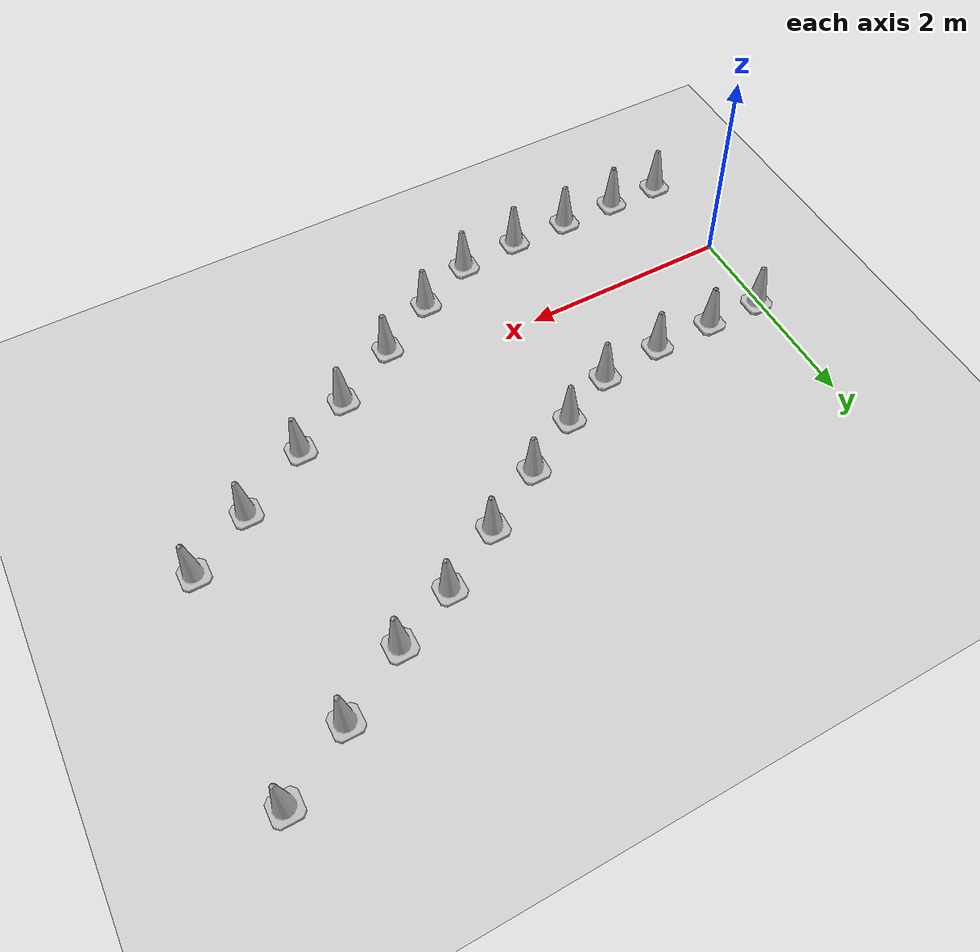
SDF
<sdf version="1.7">
 <world name="default">
  <model name="Construction_Cone_b">
   <link name="link">
    <inertial>
     <inertia><ixx>1</ixx><ixy>0</ixy><ixz>0</ixz><iyy>1</iyy><iyz>0</iyz><izz>1</izz></inertia>
     <mass>1</mass>
    </inertial>
    <visual name="visual">
     <geometry>
      <mesh><scale>4.9 4.9 4.5</scale><uri>./construction_cone/meshes/construction_cone_b.dae</uri></mesh>
     </geometry>
     <material><shader type="pixel"/></material>
    </visual>
    <collision name="collision">
     <geometry>
      <mesh><uri>./construction_cone/meshes/construction_cone_b.dae</uri><scale>4.9 4.9 4.5</scale></mesh>
     </geometry>
     <surface>
      <friction>
       <ode><mu>1</mu><mu2>1</mu2><fdir1>0 0 0</fdir1><slip1>0</slip1><slip2>0</slip2></ode>
       <torsional>
        <coefficient>1</coefficient>
        <patch_radius>0</patch_radius>
        <surface_radius>0</surface_radius>
        <use_patch_radius>1</use_patch_radius>
        <ode><slip>0</slip></ode>
       </torsional>
      </friction>
      <bounce><restitution_coefficient>0</restitution_coefficient><threshold>1e+06</threshold></bounce>
      <contact>
       <collide_without_contact>0</collide_without_contact>
       <collide_without_contact_bitmask>1</collide_without_contact_bitmask>
       <collide_bitmask>1</collide_bitmask>
       <ode>
        <soft_cfm>0</soft_cfm>
        <soft_erp>0.2</soft_erp>
        <kp>1e+13</kp>
        <kd>1</kd>
        <max_vel>0.01</max_vel>
        <min_depth>0</min_depth>
       </ode>
       <bullet>
        <split_impulse>1</split_impulse>
        <split_impulse_penetration_threshold>-0.01</split_impulse_penetration_threshold>
        <soft_cfm>0</soft_cfm>
        <soft_erp>0.2</soft_erp>
        <kp>1e+13</kp>
        <kd>1</kd>
       </bullet>
      </contact>
     </surface>
    </collision>
   </link>
   <static>0</static>
   <pose>0.093537 -0.897019 0.1 0 0 0</pose>
  </model>
  <model name="Construction_Cone_b_0">
   <link name="link">
    <inertial>
     <inertia><ixx>1</ixx><ixy>0</ixy><ixz>0</ixz><iyy>1</iyy><iyz>0</iyz><izz>1</izz></inertia>
     <mass>1</mass>
    </inertial>
    <visual name="visual">
     <geometry>
      <mesh><scale>4.9 4.9 4.5</scale><uri>./construction_cone/meshes/construction_cone_b.dae</uri></mesh>
     </geometry>
     <material><shader type="pixel"/></material>
    </visual>
    <collision name="collision">
     <geometry>
      <mesh><uri>./construction_cone/meshes/construction_cone_b.dae</uri><scale>4.9 4.9 4.5</scale></mesh>
     </geometry>
     <surface>
      <friction>
       <ode><mu>1</mu><mu2>1</mu2><fdir1>0 0 0</fdir1><slip1>0</slip1><slip2>0</slip2></ode>
       <torsional>
        <coefficient>1</coefficient>
        <patch_radius>0</patch_radius>
        <surface_radius>0</surface_radius>
        <use_patch_radius>1</use_patch_radius>
        <ode><slip>0</slip></ode>
       </torsional>
      </friction>
      <bounce><restitution_coefficient>0</restitution_coefficient><threshold>1e+06</threshold></bounce>
      <contact>
       <collide_without_contact>0</collide_without_contact>
       <collide_without_contact_bitmask>1</collide_without_contact_bitmask>
       <collide_bitmask>1</collide_bitmask>
       <ode>
        <soft_cfm>0</soft_cfm>
        <soft_erp>0.2</soft_erp>
        <kp>1e+13</kp>
        <kd>1</kd>
        <max_vel>0.01</max_vel>
        <min_depth>0</min_depth>
       </ode>
       <bullet>
        <split_impulse>1</split_impulse>
        <split_impulse_penetration_threshold>-0.01</split_impulse_penetration_threshold>
        <soft_cfm>0</soft_cfm>
        <soft_erp>0.2</soft_erp>
        <kp>1e+13</kp>
        <kd>1</kd>
       </bullet>
      </contact>
     </surface>
    </collision>
   </link>
   <static>0</static>
   <pose>0.606486 -0.90196 0.1 0 0 0</pose>
  </model>
  <model name="Construction_Cone_b_1">
   <link name="link">
    <inertial>
     <inertia><ixx>1</ixx><ixy>0</ixy><ixz>0</ixz><iyy>1</iyy><iyz>0</iyz><izz>1</izz></inertia>
     <mass>1</mass>
    </inertial>
    <visual name="visual">
     <geometry>
      <mesh><scale>4.9 4.9 4.5</scale><uri>./construction_cone/meshes/construction_cone_b.dae</uri></mesh>
     </geometry>
     <material><shader type="pixel"/></material>
    </visual>
    <collision name="collision">
     <geometry>
      <mesh><uri>./construction_cone/meshes/construction_cone_b.dae</uri><scale>4.9 4.9 4.5</scale></mesh>
     </geometry>
     <surface>
      <friction>
       <ode><mu>1</mu><mu2>1</mu2><fdir1>0 0 0</fdir1><slip1>0</slip1><slip2>0</slip2></ode>
       <torsional>
        <coefficient>1</coefficient>
        <patch_radius>0</patch_radius>
        <surface_radius>0</surface_radius>
        <use_patch_radius>1</use_patch_radius>
        <ode><slip>0</slip></ode>
       </torsional>
      </friction>
      <bounce><restitution_coefficient>0</restitution_coefficient><threshold>1e+06</threshold></bounce>
      <contact>
       <collide_without_contact>0</collide_without_contact>
       <collide_without_contact_bitmask>1</collide_without_contact_bitmask>
       <collide_bitmask>1</collide_bitmask>
       <ode>
        <soft_cfm>0</soft_cfm>
        <soft_erp>0.2</soft_erp>
        <kp>1e+13</kp>
        <kd>1</kd>
        <max_vel>0.01</max_vel>
        <min_depth>0</min_depth>
       </ode>
       <bullet>
        <split_impulse>1</split_impulse>
        <split_impulse_penetration_threshold>-0.01</split_impulse_penetration_threshold>
        <soft_cfm>0</soft_cfm>
        <soft_erp>0.2</soft_erp>
        <kp>1e+13</kp>
        <kd>1</kd>
       </bullet>
      </contact>
     </surface>
    </collision>
   </link>
   <static>0</static>
   <pose>1.16003 -0.900212 0.1 0 0 0</pose>
  </model>
  <model name="Construction_Cone_y">
   <link name="link">
    <inertial>
     <inertia><ixx>1</ixx><ixy>0</ixy><ixz>0</ixz><iyy>1</iyy><iyz>0</iyz><izz>1</izz></inertia>
     <mass>1</mass>
    </inertial>
    <visual name="visual">
     <geometry>
      <mesh><scale>4.9 4.9 4.5</scale><uri>./construction_cone/meshes/construction_cone_y.dae</uri></mesh>
     </geometry>
     <material><shader type="pixel"/></material>
    </visual>
    <collision name="collision">
     <geometry>
      <mesh><uri>./construction_cone/meshes/construction_cone_y.dae</uri><scale>4.9 4.9 4.5</scale></mesh>
     </geometry>
     <surface>
      <friction>
       <ode><mu>1</mu><mu2>1</mu2><fdir1>0 0 0</fdir1><slip1>0</slip1><slip2>0</slip2></ode>
       <torsional>
        <coefficient>1</coefficient>
        <patch_radius>0</patch_radius>
        <surface_radius>0</surface_radius>
        <use_patch_radius>1</use_patch_radius>
        <ode><slip>0</slip></ode>
       </torsional>
      </friction>
      <bounce><restitution_coefficient>0</restitution_coefficient><threshold>1e+06</threshold></bounce>
      <contact>
       <collide_without_contact>0</collide_without_contact>
       <collide_without_contact_bitmask>1</collide_without_contact_bitmask>
       <collide_bitmask>1</collide_bitmask>
       <ode>
        <soft_cfm>0</soft_cfm>
        <soft_erp>0.2</soft_erp>
        <kp>1e+13</kp>
        <kd>1</kd>
        <max_vel>0.01</max_vel>
        <min_depth>0</min_depth>
       </ode>
       <bullet>
        <split_impulse>1</split_impulse>
        <split_impulse_penetration_threshold>-0.01</split_impulse_penetration_threshold>
        <soft_cfm>0</soft_cfm>
        <soft_erp>0.2</soft_erp>
        <kp>1e+13</kp>
        <kd>1</kd>
       </bullet>
      </contact>
     </surface>
    </collision>
   </link>
   <static>0</static>
   <pose>0.091565 0.900771 0.1 0 0 0</pose>
  </model>
  <model name="Construction_Cone_b_2">
   <link name="link">
    <inertial>
     <inertia><ixx>1</ixx><ixy>0</ixy><ixz>0</ixz><iyy>1</iyy><iyz>0</iyz><izz>1</izz></inertia>
     <mass>1</mass>
    </inertial>
    <visual name="visual">
     <geometry>
      <mesh><scale>4.9 4.9 4.5</scale><uri>./construction_cone/meshes/construction_cone_b.dae</uri></mesh>
     </geometry>
     <material><shader type="pixel"/></material>
    </visual>
    <collision name="collision">
     <geometry>
      <mesh><uri>./construction_cone/meshes/construction_cone_b.dae</uri><scale>4.9 4.9 4.5</scale></mesh>
     </geometry>
     <surface>
      <friction>
       <ode><mu>1</mu><mu2>1</mu2><fdir1>0 0 0</fdir1><slip1>0</slip1><slip2>0</slip2></ode>
       <torsional>
        <coefficient>1</coefficient>
        <patch_radius>0</patch_radius>
        <surface_radius>0</surface_radius>
        <use_patch_radius>1</use_patch_radius>
        <ode><slip>0</slip></ode>
       </torsional>
      </friction>
      <bounce><restitution_coefficient>0</restitution_coefficient><threshold>1e+06</threshold></bounce>
      <contact>
       <collide_without_contact>0</collide_without_contact>
       <collide_without_contact_bitmask>1</collide_without_contact_bitmask>
       <collide_bitmask>1</collide_bitmask>
       <ode>
        <soft_cfm>0</soft_cfm>
        <soft_erp>0.2</soft_erp>
        <kp>1e+13</kp>
        <kd>1</kd>
        <max_vel>0.01</max_vel>
        <min_depth>0</min_depth>
       </ode>
       <bullet>
        <split_impulse>1</split_impulse>
        <split_impulse_penetration_threshold>-0.01</split_impulse_penetration_threshold>
        <soft_cfm>0</soft_cfm>
        <soft_erp>0.2</soft_erp>
        <kp>1e+13</kp>
        <kd>1</kd>
       </bullet>
      </contact>
     </surface>
    </collision>
   </link>
   <static>0</static>
   <pose>1.73023 -0.902282 0.1 0 0 0</pose>
  </model>
  <model name="Construction_Cone_b_3">
   <link name="link">
    <inertial>
     <inertia><ixx>1</ixx><ixy>0</ixy><ixz>0</ixz><iyy>1</iyy><iyz>0</iyz><izz>1</izz></inertia>
     <mass>1</mass>
    </inertial>
    <visual name="visual">
     <geometry>
      <mesh><scale>4.9 4.9 4.5</scale><uri>./construction_cone/meshes/construction_cone_b.dae</uri></mesh>
     </geometry>
     <material><shader type="pixel"/></material>
    </visual>
    <collision name="collision">
     <geometry>
      <mesh><uri>./construction_cone/meshes/construction_cone_b.dae</uri><scale>4.9 4.9 4.5</scale></mesh>
     </geometry>
     <surface>
      <friction>
       <ode><mu>1</mu><mu2>1</mu2><fdir1>0 0 0</fdir1><slip1>0</slip1><slip2>0</slip2></ode>
       <torsional>
        <coefficient>1</coefficient>
        <patch_radius>0</patch_radius>
        <surface_radius>0</surface_radius>
        <use_patch_radius>1</use_patch_radius>
        <ode><slip>0</slip></ode>
       </torsional>
      </friction>
      <bounce><restitution_coefficient>0</restitution_coefficient><threshold>1e+06</threshold></bounce>
      <contact>
       <collide_without_contact>0</collide_without_contact>
       <collide_without_contact_bitmask>1</collide_without_contact_bitmask>
       <collide_bitmask>1</collide_bitmask>
       <ode>
        <soft_cfm>0</soft_cfm>
        <soft_erp>0.2</soft_erp>
        <kp>1e+13</kp>
        <kd>1</kd>
        <max_vel>0.01</max_vel>
        <min_depth>0</min_depth>
       </ode>
       <bullet>
        <split_impulse>1</split_impulse>
        <split_impulse_penetration_threshold>-0.01</split_impulse_penetration_threshold>
        <soft_cfm>0</soft_cfm>
        <soft_erp>0.2</soft_erp>
        <kp>1e+13</kp>
        <kd>1</kd>
       </bullet>
      </contact>
     </surface>
    </collision>
   </link>
   <static>0</static>
   <pose>2.31119 -0.853844 0.1 0 0 0</pose>
  </model>
  <model name="Construction_Cone_b_4">
   <link name="link">
    <inertial>
     <inertia><ixx>1</ixx><ixy>0</ixy><ixz>0</ixz><iyy>1</iyy><iyz>0</iyz><izz>1</izz></inertia>
     <mass>1</mass>
    </inertial>
    <visual name="visual">
     <geometry>
      <mesh><scale>4.9 4.9 4.5</scale><uri>./construction_cone/meshes/construction_cone_b.dae</uri></mesh>
     </geometry>
     <material><shader type="pixel"/></material>
    </visual>
    <collision name="collision">
     <geometry>
      <mesh><uri>./construction_cone/meshes/construction_cone_b.dae</uri><scale>4.9 4.9 4.5</scale></mesh>
     </geometry>
     <surface>
      <friction>
       <ode><mu>1</mu><mu2>1</mu2><fdir1>0 0 0</fdir1><slip1>0</slip1><slip2>0</slip2></ode>
       <torsional>
        <coefficient>1</coefficient>
        <patch_radius>0</patch_radius>
        <surface_radius>0</surface_radius>
        <use_patch_radius>1</use_patch_radius>
        <ode><slip>0</slip></ode>
       </torsional>
      </friction>
      <bounce><restitution_coefficient>0</restitution_coefficient><threshold>1e+06</threshold></bounce>
      <contact>
       <collide_without_contact>0</collide_without_contact>
       <collide_without_contact_bitmask>1</collide_without_contact_bitmask>
       <collide_bitmask>1</collide_bitmask>
       <ode>
        <soft_cfm>0</soft_cfm>
        <soft_erp>0.2</soft_erp>
        <kp>1e+13</kp>
        <kd>1</kd>
        <max_vel>0.01</max_vel>
        <min_depth>0</min_depth>
       </ode>
       <bullet>
        <split_impulse>1</split_impulse>
        <split_impulse_penetration_threshold>-0.01</split_impulse_penetration_threshold>
        <soft_cfm>0</soft_cfm>
        <soft_erp>0.2</soft_erp>
        <kp>1e+13</kp>
        <kd>1</kd>
       </bullet>
      </contact>
     </surface>
    </collision>
   </link>
   <static>0</static>
   <pose>2.84787 -0.595042 0.1 0 0 0</pose>
  </model>
  <model name="Construction_Cone_b_5">
   <link name="link">
    <inertial>
     <inertia><ixx>1</ixx><ixy>0</ixy><ixz>0</ixz><iyy>1</iyy><iyz>0</iyz><izz>1</izz></inertia>
     <mass>1</mass>
    </inertial>
    <visual name="visual">
     <geometry>
      <mesh><scale>4.9 4.9 4.5</scale><uri>./construction_cone/meshes/construction_cone_b.dae</uri></mesh>
     </geometry>
     <material><shader type="pixel"/></material>
    </visual>
    <collision name="collision">
     <geometry>
      <mesh><uri>./construction_cone/meshes/construction_cone_b.dae</uri><scale>4.9 4.9 4.5</scale></mesh>
     </geometry>
     <surface>
      <friction>
       <ode><mu>1</mu><mu2>1</mu2><fdir1>0 0 0</fdir1><slip1>0</slip1><slip2>0</slip2></ode>
       <torsional>
        <coefficient>1</coefficient>
        <patch_radius>0</patch_radius>
        <surface_radius>0</surface_radius>
        <use_patch_radius>1</use_patch_radius>
        <ode><slip>0</slip></ode>
       </torsional>
      </friction>
      <bounce><restitution_coefficient>0</restitution_coefficient><threshold>1e+06</threshold></bounce>
      <contact>
       <collide_without_contact>0</collide_without_contact>
       <collide_without_contact_bitmask>1</collide_without_contact_bitmask>
       <collide_bitmask>1</collide_bitmask>
       <ode>
        <soft_cfm>0</soft_cfm>
        <soft_erp>0.2</soft_erp>
        <kp>1e+13</kp>
        <kd>1</kd>
        <max_vel>0.01</max_vel>
        <min_depth>0</min_depth>
       </ode>
       <bullet>
        <split_impulse>1</split_impulse>
        <split_impulse_penetration_threshold>-0.01</split_impulse_penetration_threshold>
        <soft_cfm>0</soft_cfm>
        <soft_erp>0.2</soft_erp>
        <kp>1e+13</kp>
        <kd>1</kd>
       </bullet>
      </contact>
     </surface>
    </collision>
   </link>
   <static>0</static>
   <pose>3.39406 -0.275779 0.1 0 0 0</pose>
  </model>
  <model name="Construction_Cone_b_6">
   <link name="link">
    <inertial>
     <inertia><ixx>1</ixx><ixy>0</ixy><ixz>0</ixz><iyy>1</iyy><iyz>0</iyz><izz>1</izz></inertia>
     <mass>1</mass>
    </inertial>
    <visual name="visual">
     <geometry>
      <mesh><scale>4.9 4.9 4.5</scale><uri>./construction_cone/meshes/construction_cone_b.dae</uri></mesh>
     </geometry>
     <material><shader type="pixel"/></material>
    </visual>
    <collision name="collision">
     <geometry>
      <mesh><uri>./construction_cone/meshes/construction_cone_b.dae</uri><scale>4.9 4.9 4.5</scale></mesh>
     </geometry>
     <surface>
      <friction>
       <ode><mu>1</mu><mu2>1</mu2><fdir1>0 0 0</fdir1><slip1>0</slip1><slip2>0</slip2></ode>
       <torsional>
        <coefficient>1</coefficient>
        <patch_radius>0</patch_radius>
        <surface_radius>0</surface_radius>
        <use_patch_radius>1</use_patch_radius>
        <ode><slip>0</slip></ode>
       </torsional>
      </friction>
      <bounce><restitution_coefficient>0</restitution_coefficient><threshold>1e+06</threshold></bounce>
      <contact>
       <collide_without_contact>0</collide_without_contact>
       <collide_without_contact_bitmask>1</collide_without_contact_bitmask>
       <collide_bitmask>1</collide_bitmask>
       <ode>
        <soft_cfm>0</soft_cfm>
        <soft_erp>0.2</soft_erp>
        <kp>1e+13</kp>
        <kd>1</kd>
        <max_vel>0.01</max_vel>
        <min_depth>0</min_depth>
       </ode>
       <bullet>
        <split_impulse>1</split_impulse>
        <split_impulse_penetration_threshold>-0.01</split_impulse_penetration_threshold>
        <soft_cfm>0</soft_cfm>
        <soft_erp>0.2</soft_erp>
        <kp>1e+13</kp>
        <kd>1</kd>
       </bullet>
      </contact>
     </surface>
    </collision>
   </link>
   <static>0</static>
   <pose>5.14298 0.744444 0.1 0 0 0</pose>
  </model>
  <model name="Construction_Cone_b_7">
   <link name="link">
    <inertial>
     <inertia><ixx>1</ixx><ixy>0</ixy><ixz>0</ixz><iyy>1</iyy><iyz>0</iyz><izz>1</izz></inertia>
     <mass>1</mass>
    </inertial>
    <visual name="visual">
     <geometry>
      <mesh><scale>4.9 4.9 4.5</scale><uri>./construction_cone/meshes/construction_cone_b.dae</uri></mesh>
     </geometry>
     <material><shader type="pixel"/></material>
    </visual>
    <collision name="collision">
     <geometry>
      <mesh><uri>./construction_cone/meshes/construction_cone_b.dae</uri><scale>4.9 4.9 4.5</scale></mesh>
     </geometry>
     <surface>
      <friction>
       <ode><mu>1</mu><mu2>1</mu2><fdir1>0 0 0</fdir1><slip1>0</slip1><slip2>0</slip2></ode>
       <torsional>
        <coefficient>1</coefficient>
        <patch_radius>0</patch_radius>
        <surface_radius>0</surface_radius>
        <use_patch_radius>1</use_patch_radius>
        <ode><slip>0</slip></ode>
       </torsional>
      </friction>
      <bounce><restitution_coefficient>0</restitution_coefficient><threshold>1e+06</threshold></bounce>
      <contact>
       <collide_without_contact>0</collide_without_contact>
       <collide_without_contact_bitmask>1</collide_without_contact_bitmask>
       <collide_bitmask>1</collide_bitmask>
       <ode>
        <soft_cfm>0</soft_cfm>
        <soft_erp>0.2</soft_erp>
        <kp>1e+13</kp>
        <kd>1</kd>
        <max_vel>0.01</max_vel>
        <min_depth>0</min_depth>
       </ode>
       <bullet>
        <split_impulse>1</split_impulse>
        <split_impulse_penetration_threshold>-0.01</split_impulse_penetration_threshold>
        <soft_cfm>0</soft_cfm>
        <soft_erp>0.2</soft_erp>
        <kp>1e+13</kp>
        <kd>1</kd>
       </bullet>
      </contact>
     </surface>
    </collision>
   </link>
   <static>0</static>
   <pose>3.98269 0.070598 0.1 0 0 0</pose>
  </model>
  <model name="Construction_Cone_b_8">
   <link name="link">
    <inertial>
     <inertia><ixx>1</ixx><ixy>0</ixy><ixz>0</ixz><iyy>1</iyy><iyz>0</iyz><izz>1</izz></inertia>
     <mass>1</mass>
    </inertial>
    <visual name="visual">
     <geometry>
      <mesh><scale>4.9 4.9 4.5</scale><uri>./construction_cone/meshes/construction_cone_b.dae</uri></mesh>
     </geometry>
     <material><shader type="pixel"/></material>
    </visual>
    <collision name="collision">
     <geometry>
      <mesh><uri>./construction_cone/meshes/construction_cone_b.dae</uri><scale>4.9 4.9 4.5</scale></mesh>
     </geometry>
     <surface>
      <friction>
       <ode><mu>1</mu><mu2>1</mu2><fdir1>0 0 0</fdir1><slip1>0</slip1><slip2>0</slip2></ode>
       <torsional>
        <coefficient>1</coefficient>
        <patch_radius>0</patch_radius>
        <surface_radius>0</surface_radius>
        <use_patch_radius>1</use_patch_radius>
        <ode><slip>0</slip></ode>
       </torsional>
      </friction>
      <bounce><restitution_coefficient>0</restitution_coefficient><threshold>1e+06</threshold></bounce>
      <contact>
       <collide_without_contact>0</collide_without_contact>
       <collide_without_contact_bitmask>1</collide_without_contact_bitmask>
       <collide_bitmask>1</collide_bitmask>
       <ode>
        <soft_cfm>0</soft_cfm>
        <soft_erp>0.2</soft_erp>
        <kp>1e+13</kp>
        <kd>1</kd>
        <max_vel>0.01</max_vel>
        <min_depth>0</min_depth>
       </ode>
       <bullet>
        <split_impulse>1</split_impulse>
        <split_impulse_penetration_threshold>-0.01</split_impulse_penetration_threshold>
        <soft_cfm>0</soft_cfm>
        <soft_erp>0.2</soft_erp>
        <kp>1e+13</kp>
        <kd>1</kd>
       </bullet>
      </contact>
     </surface>
    </collision>
   </link>
   <static>0</static>
   <pose>4.51383 0.378539 0.1 0 0 0</pose>
  </model>
  <model name="Construction_Cone_y_0">
   <link name="link">
    <inertial>
     <inertia><ixx>1</ixx><ixy>0</ixy><ixz>0</ixz><iyy>1</iyy><iyz>0</iyz><izz>1</izz></inertia>
     <mass>1</mass>
    </inertial>
    <visual name="visual">
     <geometry>
      <mesh><scale>4.9 4.9 4.5</scale><uri>./construction_cone/meshes/construction_cone_y.dae</uri></mesh>
     </geometry>
     <material><shader type="pixel"/></material>
    </visual>
    <collision name="collision">
     <geometry>
      <mesh><uri>./construction_cone/meshes/construction_cone_y.dae</uri><scale>4.9 4.9 4.5</scale></mesh>
     </geometry>
     <surface>
      <friction>
       <ode><mu>1</mu><mu2>1</mu2><fdir1>0 0 0</fdir1><slip1>0</slip1><slip2>0</slip2></ode>
       <torsional>
        <coefficient>1</coefficient>
        <patch_radius>0</patch_radius>
        <surface_radius>0</surface_radius>
        <use_patch_radius>1</use_patch_radius>
        <ode><slip>0</slip></ode>
       </torsional>
      </friction>
      <bounce><restitution_coefficient>0</restitution_coefficient><threshold>1e+06</threshold></bounce>
      <contact>
       <collide_without_contact>0</collide_without_contact>
       <collide_without_contact_bitmask>1</collide_without_contact_bitmask>
       <collide_bitmask>1</collide_bitmask>
       <ode>
        <soft_cfm>0</soft_cfm>
        <soft_erp>0.2</soft_erp>
        <kp>1e+13</kp>
        <kd>1</kd>
        <max_vel>0.01</max_vel>
        <min_depth>0</min_depth>
       </ode>
       <bullet>
        <split_impulse>1</split_impulse>
        <split_impulse_penetration_threshold>-0.01</split_impulse_penetration_threshold>
        <soft_cfm>0</soft_cfm>
        <soft_erp>0.2</soft_erp>
        <kp>1e+13</kp>
        <kd>1</kd>
       </bullet>
      </contact>
     </surface>
    </collision>
   </link>
   <static>0</static>
   <pose>0.622219 0.89678 0.1 0 0 0</pose>
  </model>
  <model name="Construction_Cone_y_1">
   <link name="link">
    <inertial>
     <inertia><ixx>1</ixx><ixy>0</ixy><ixz>0</ixz><iyy>1</iyy><iyz>0</iyz><izz>1</izz></inertia>
     <mass>1</mass>
    </inertial>
    <visual name="visual">
     <geometry>
      <mesh><scale>4.9 4.9 4.5</scale><uri>./construction_cone/meshes/construction_cone_y.dae</uri></mesh>
     </geometry>
     <material><shader type="pixel"/></material>
    </visual>
    <collision name="collision">
     <geometry>
      <mesh><uri>./construction_cone/meshes/construction_cone_y.dae</uri><scale>4.9 4.9 4.5</scale></mesh>
     </geometry>
     <surface>
      <friction>
       <ode><mu>1</mu><mu2>1</mu2><fdir1>0 0 0</fdir1><slip1>0</slip1><slip2>0</slip2></ode>
       <torsional>
        <coefficient>1</coefficient>
        <patch_radius>0</patch_radius>
        <surface_radius>0</surface_radius>
        <use_patch_radius>1</use_patch_radius>
        <ode><slip>0</slip></ode>
       </torsional>
      </friction>
      <bounce><restitution_coefficient>0</restitution_coefficient><threshold>1e+06</threshold></bounce>
      <contact>
       <collide_without_contact>0</collide_without_contact>
       <collide_without_contact_bitmask>1</collide_without_contact_bitmask>
       <collide_bitmask>1</collide_bitmask>
       <ode>
        <soft_cfm>0</soft_cfm>
        <soft_erp>0.2</soft_erp>
        <kp>1e+13</kp>
        <kd>1</kd>
        <max_vel>0.01</max_vel>
        <min_depth>0</min_depth>
       </ode>
       <bullet>
        <split_impulse>1</split_impulse>
        <split_impulse_penetration_threshold>-0.01</split_impulse_penetration_threshold>
        <soft_cfm>0</soft_cfm>
        <soft_erp>0.2</soft_erp>
        <kp>1e+13</kp>
        <kd>1</kd>
       </bullet>
      </contact>
     </surface>
    </collision>
   </link>
   <static>0</static>
   <pose>1.20445 0.898871 0.1 0 0 0</pose>
  </model>
  <model name="Construction_Cone_y_2">
   <link name="link">
    <inertial>
     <inertia><ixx>1</ixx><ixy>0</ixy><ixz>0</ixz><iyy>1</iyy><iyz>0</iyz><izz>1</izz></inertia>
     <mass>1</mass>
    </inertial>
    <visual name="visual">
     <geometry>
      <mesh><scale>4.9 4.9 4.5</scale><uri>./construction_cone/meshes/construction_cone_y.dae</uri></mesh>
     </geometry>
     <material><shader type="pixel"/></material>
    </visual>
    <collision name="collision">
     <geometry>
      <mesh><uri>./construction_cone/meshes/construction_cone_y.dae</uri><scale>4.9 4.9 4.5</scale></mesh>
     </geometry>
     <surface>
      <friction>
       <ode><mu>1</mu><mu2>1</mu2><fdir1>0 0 0</fdir1><slip1>0</slip1><slip2>0</slip2></ode>
       <torsional>
        <coefficient>1</coefficient>
        <patch_radius>0</patch_radius>
        <surface_radius>0</surface_radius>
        <use_patch_radius>1</use_patch_radius>
        <ode><slip>0</slip></ode>
       </torsional>
      </friction>
      <bounce><restitution_coefficient>0</restitution_coefficient><threshold>1e+06</threshold></bounce>
      <contact>
       <collide_without_contact>0</collide_without_contact>
       <collide_without_contact_bitmask>1</collide_without_contact_bitmask>
       <collide_bitmask>1</collide_bitmask>
       <ode>
        <soft_cfm>0</soft_cfm>
        <soft_erp>0.2</soft_erp>
        <kp>1e+13</kp>
        <kd>1</kd>
        <max_vel>0.01</max_vel>
        <min_depth>0</min_depth>
       </ode>
       <bullet>
        <split_impulse>1</split_impulse>
        <split_impulse_penetration_threshold>-0.01</split_impulse_penetration_threshold>
        <soft_cfm>0</soft_cfm>
        <soft_erp>0.2</soft_erp>
        <kp>1e+13</kp>
        <kd>1</kd>
       </bullet>
      </contact>
     </surface>
    </collision>
   </link>
   <static>0</static>
   <pose>1.80702 0.965041 0.1 0 0 0</pose>
  </model>
  <model name="Construction_Cone_y_3">
   <link name="link">
    <inertial>
     <inertia><ixx>1</ixx><ixy>0</ixy><ixz>0</ixz><iyy>1</iyy><iyz>0</iyz><izz>1</izz></inertia>
     <mass>1</mass>
    </inertial>
    <visual name="visual">
     <geometry>
      <mesh><scale>4.9 4.9 4.5</scale><uri>./construction_cone/meshes/construction_cone_y.dae</uri></mesh>
     </geometry>
     <material><shader type="pixel"/></material>
    </visual>
    <collision name="collision">
     <geometry>
      <mesh><uri>./construction_cone/meshes/construction_cone_y.dae</uri><scale>4.9 4.9 4.5</scale></mesh>
     </geometry>
     <surface>
      <friction>
       <ode><mu>1</mu><mu2>1</mu2><fdir1>0 0 0</fdir1><slip1>0</slip1><slip2>0</slip2></ode>
       <torsional>
        <coefficient>1</coefficient>
        <patch_radius>0</patch_radius>
        <surface_radius>0</surface_radius>
        <use_patch_radius>1</use_patch_radius>
        <ode><slip>0</slip></ode>
       </torsional>
      </friction>
      <bounce><restitution_coefficient>0</restitution_coefficient><threshold>1e+06</threshold></bounce>
      <contact>
       <collide_without_contact>0</collide_without_contact>
       <collide_without_contact_bitmask>1</collide_without_contact_bitmask>
       <collide_bitmask>1</collide_bitmask>
       <ode>
        <soft_cfm>0</soft_cfm>
        <soft_erp>0.2</soft_erp>
        <kp>1e+13</kp>
        <kd>1</kd>
        <max_vel>0.01</max_vel>
        <min_depth>0</min_depth>
       </ode>
       <bullet>
        <split_impulse>1</split_impulse>
        <split_impulse_penetration_threshold>-0.01</split_impulse_penetration_threshold>
        <soft_cfm>0</soft_cfm>
        <soft_erp>0.2</soft_erp>
        <kp>1e+13</kp>
        <kd>1</kd>
       </bullet>
      </contact>
     </surface>
    </collision>
   </link>
   <static>0</static>
   <pose>2.3205 1.21296 0.1 0 0 0</pose>
  </model>
  <model name="Construction_Cone_y_5">
   <link name="link">
    <inertial>
     <inertia><ixx>1</ixx><ixy>0</ixy><ixz>0</ixz><iyy>1</iyy><iyz>0</iyz><izz>1</izz></inertia>
     <mass>1</mass>
    </inertial>
    <visual name="visual">
     <geometry>
      <mesh><scale>4.9 4.9 4.5</scale><uri>./construction_cone/meshes/construction_cone_y.dae</uri></mesh>
     </geometry>
     <material><shader type="pixel"/></material>
    </visual>
    <collision name="collision">
     <geometry>
      <mesh><uri>./construction_cone/meshes/construction_cone_y.dae</uri><scale>4.9 4.9 4.5</scale></mesh>
     </geometry>
     <surface>
      <friction>
       <ode><mu>1</mu><mu2>1</mu2><fdir1>0 0 0</fdir1><slip1>0</slip1><slip2>0</slip2></ode>
       <torsional>
        <coefficient>1</coefficient>
        <patch_radius>0</patch_radius>
        <surface_radius>0</surface_radius>
        <use_patch_radius>1</use_patch_radius>
        <ode><slip>0</slip></ode>
       </torsional>
      </friction>
      <bounce><restitution_coefficient>0</restitution_coefficient><threshold>1e+06</threshold></bounce>
      <contact>
       <collide_without_contact>0</collide_without_contact>
       <collide_without_contact_bitmask>1</collide_without_contact_bitmask>
       <collide_bitmask>1</collide_bitmask>
       <ode>
        <soft_cfm>0</soft_cfm>
        <soft_erp>0.2</soft_erp>
        <kp>1e+13</kp>
        <kd>1</kd>
        <max_vel>0.01</max_vel>
        <min_depth>0</min_depth>
       </ode>
       <bullet>
        <split_impulse>1</split_impulse>
        <split_impulse_penetration_threshold>-0.01</split_impulse_penetration_threshold>
        <soft_cfm>0</soft_cfm>
        <soft_erp>0.2</soft_erp>
        <kp>1e+13</kp>
        <kd>1</kd>
       </bullet>
      </contact>
     </surface>
    </collision>
   </link>
   <static>0</static>
   <pose>2.85114 1.52267 0.1 0 0 0</pose>
  </model>
  <model name="Construction_Cone_y_6">
   <link name="link">
    <inertial>
     <inertia><ixx>1</ixx><ixy>0</ixy><ixz>0</ixz><iyy>1</iyy><iyz>0</iyz><izz>1</izz></inertia>
     <mass>1</mass>
    </inertial>
    <visual name="visual">
     <geometry>
      <mesh><scale>4.9 4.9 4.5</scale><uri>./construction_cone/meshes/construction_cone_y.dae</uri></mesh>
     </geometry>
     <material><shader type="pixel"/></material>
    </visual>
    <collision name="collision">
     <geometry>
      <mesh><uri>./construction_cone/meshes/construction_cone_y.dae</uri><scale>4.9 4.9 4.5</scale></mesh>
     </geometry>
     <surface>
      <friction>
       <ode><mu>1</mu><mu2>1</mu2><fdir1>0 0 0</fdir1><slip1>0</slip1><slip2>0</slip2></ode>
       <torsional>
        <coefficient>1</coefficient>
        <patch_radius>0</patch_radius>
        <surface_radius>0</surface_radius>
        <use_patch_radius>1</use_patch_radius>
        <ode><slip>0</slip></ode>
       </torsional>
      </friction>
      <bounce><restitution_coefficient>0</restitution_coefficient><threshold>1e+06</threshold></bounce>
      <contact>
       <collide_without_contact>0</collide_without_contact>
       <collide_without_contact_bitmask>1</collide_without_contact_bitmask>
       <collide_bitmask>1</collide_bitmask>
       <ode>
        <soft_cfm>0</soft_cfm>
        <soft_erp>0.2</soft_erp>
        <kp>1e+13</kp>
        <kd>1</kd>
        <max_vel>0.01</max_vel>
        <min_depth>0</min_depth>
       </ode>
       <bullet>
        <split_impulse>1</split_impulse>
        <split_impulse_penetration_threshold>-0.01</split_impulse_penetration_threshold>
        <soft_cfm>0</soft_cfm>
        <soft_erp>0.2</soft_erp>
        <kp>1e+13</kp>
        <kd>1</kd>
       </bullet>
      </contact>
     </surface>
    </collision>
   </link>
   <static>0</static>
   <pose>3.41707 1.85526 0.1 0 0 0</pose>
  </model>
  <model name="Construction_Cone_y_7">
   <link name="link">
    <inertial>
     <inertia><ixx>1</ixx><ixy>0</ixy><ixz>0</ixz><iyy>1</iyy><iyz>0</iyz><izz>1</izz></inertia>
     <mass>1</mass>
    </inertial>
    <visual name="visual">
     <geometry>
      <mesh><scale>4.9 4.9 4.5</scale><uri>./construction_cone/meshes/construction_cone_y.dae</uri></mesh>
     </geometry>
     <material><shader type="pixel"/></material>
    </visual>
    <collision name="collision">
     <geometry>
      <mesh><uri>./construction_cone/meshes/construction_cone_y.dae</uri><scale>4.9 4.9 4.5</scale></mesh>
     </geometry>
     <surface>
      <friction>
       <ode><mu>1</mu><mu2>1</mu2><fdir1>0 0 0</fdir1><slip1>0</slip1><slip2>0</slip2></ode>
       <torsional>
        <coefficient>1</coefficient>
        <patch_radius>0</patch_radius>
        <surface_radius>0</surface_radius>
        <use_patch_radius>1</use_patch_radius>
        <ode><slip>0</slip></ode>
       </torsional>
      </friction>
      <bounce><restitution_coefficient>0</restitution_coefficient><threshold>1e+06</threshold></bounce>
      <contact>
       <collide_without_contact>0</collide_without_contact>
       <collide_without_contact_bitmask>1</collide_without_contact_bitmask>
       <collide_bitmask>1</collide_bitmask>
       <ode>
        <soft_cfm>0</soft_cfm>
        <soft_erp>0.2</soft_erp>
        <kp>1e+13</kp>
        <kd>1</kd>
        <max_vel>0.01</max_vel>
        <min_depth>0</min_depth>
       </ode>
       <bullet>
        <split_impulse>1</split_impulse>
        <split_impulse_penetration_threshold>-0.01</split_impulse_penetration_threshold>
        <soft_cfm>0</soft_cfm>
        <soft_erp>0.2</soft_erp>
        <kp>1e+13</kp>
        <kd>1</kd>
       </bullet>
      </contact>
     </surface>
    </collision>
   </link>
   <static>0</static>
   <pose>3.97498 2.18035 0.1 0 0 0</pose>
  </model>
  <model name="Construction_Cone_b_9">
   <link name="link">
    <inertial>
     <inertia><ixx>1</ixx><ixy>0</ixy><ixz>0</ixz><iyy>1</iyy><iyz>0</iyz><izz>1</izz></inertia>
     <mass>1</mass>
    </inertial>
    <visual name="visual">
     <geometry>
      <mesh><scale>4.9 4.9 4.5</scale><uri>./construction_cone/meshes/construction_cone_b.dae</uri></mesh>
     </geometry>
     <material><shader type="pixel"/></material>
    </visual>
    <collision name="collision">
     <geometry>
      <mesh><uri>./construction_cone/meshes/construction_cone_b.dae</uri><scale>4.9 4.9 4.5</scale></mesh>
     </geometry>
     <surface>
      <friction>
       <ode><mu>1</mu><mu2>1</mu2><fdir1>0 0 0</fdir1><slip1>0</slip1><slip2>0</slip2></ode>
       <torsional>
        <coefficient>1</coefficient>
        <patch_radius>0</patch_radius>
        <surface_radius>0</surface_radius>
        <use_patch_radius>1</use_patch_radius>
        <ode><slip>0</slip></ode>
       </torsional>
      </friction>
      <bounce><restitution_coefficient>0</restitution_coefficient><threshold>1e+06</threshold></bounce>
      <contact>
       <collide_without_contact>0</collide_without_contact>
       <collide_without_contact_bitmask>1</collide_without_contact_bitmask>
       <collide_bitmask>1</collide_bitmask>
       <ode>
        <soft_cfm>0</soft_cfm>
        <soft_erp>0.2</soft_erp>
        <kp>1e+13</kp>
        <kd>1</kd>
        <max_vel>0.01</max_vel>
        <min_depth>0</min_depth>
       </ode>
       <bullet>
        <split_impulse>1</split_impulse>
        <split_impulse_penetration_threshold>-0.01</split_impulse_penetration_threshold>
        <soft_cfm>0</soft_cfm>
        <soft_erp>0.2</soft_erp>
        <kp>1e+13</kp>
        <kd>1</kd>
       </bullet>
      </contact>
     </surface>
    </collision>
   </link>
   <static>0</static>
   <pose>5.70832 1.07659 0.1 0 0 0</pose>
  </model>
  <model name="Construction_Cone_y_8">
   <link name="link">
    <inertial>
     <pose>0 0 0.1 0 -0 0</pose>
     <inertia><ixx>1</ixx><ixy>0</ixy><ixz>0</ixz><iyy>1</iyy><iyz>0</iyz><izz>1</izz></inertia>
     <mass>1</mass>
    </inertial>
    <pose>0 0 0.1 0 -0 0</pose>
    <visual name="visual">
     <geometry>
      <mesh><scale>4.9 4.9 4.5</scale><uri>./construction_cone/meshes/construction_cone_y.dae</uri></mesh>
     </geometry>
     <material><shader type="pixel"/></material>
     <pose>0 0 0.1 0 -0 0</pose>
    </visual>
    <collision name="collision">
     <pose>0 0 0.1 0 -0 0</pose>
     <geometry>
      <mesh><uri>./construction_cone/meshes/construction_cone_y.dae</uri><scale>4.9 4.9 4.5</scale></mesh>
     </geometry>
     <surface>
      <friction>
       <ode><mu>1</mu><mu2>1</mu2><fdir1>0 0 0</fdir1><slip1>0</slip1><slip2>0</slip2></ode>
       <torsional>
        <coefficient>1</coefficient>
        <patch_radius>0</patch_radius>
        <surface_radius>0</surface_radius>
        <use_patch_radius>1</use_patch_radius>
        <ode><slip>0</slip></ode>
       </torsional>
      </friction>
      <bounce><restitution_coefficient>0</restitution_coefficient><threshold>1e+06</threshold></bounce>
      <contact>
       <collide_without_contact>0</collide_without_contact>
       <collide_without_contact_bitmask>1</collide_without_contact_bitmask>
       <collide_bitmask>1</collide_bitmask>
       <ode>
        <soft_cfm>0</soft_cfm>
        <soft_erp>0.2</soft_erp>
        <kp>1e+13</kp>
        <kd>1</kd>
        <max_vel>0.01</max_vel>
        <min_depth>0</min_depth>
       </ode>
       <bullet>
        <split_impulse>1</split_impulse>
        <split_impulse_penetration_threshold>-0.01</split_impulse_penetration_threshold>
        <soft_cfm>0</soft_cfm>
        <soft_erp>0.2</soft_erp>
        <kp>1e+13</kp>
        <kd>1</kd>
       </bullet>
      </contact>
     </surface>
    </collision>
   </link>
   <static>0</static>
   <pose>4.54324 2.51449 0.1 0 0 0</pose>
  </model>
  <model name="Construction_Cone_y_9">
   <link name="link">
    <inertial>
     <pose>0 0 0.1 0 -0 0</pose>
     <inertia><ixx>1</ixx><ixy>0</ixy><ixz>0</ixz><iyy>1</iyy><iyz>0</iyz><izz>1</izz></inertia>
     <mass>1</mass>
    </inertial>
    <pose>0 0 0.1 0 -0 0</pose>
    <visual name="visual">
     <geometry>
      <mesh><scale>4.9 4.9 4.5</scale><uri>./construction_cone/meshes/construction_cone_y.dae</uri></mesh>
     </geometry>
     <material><shader type="pixel"/></material>
     <pose>0 0 0.1 0 -0 0</pose>
    </visual>
    <collision name="collision">
     <pose>0 0 0.1 0 -0 0</pose>
     <geometry>
      <mesh><uri>./construction_cone/meshes/construction_cone_y.dae</uri><scale>4.9 4.9 4.5</scale></mesh>
     </geometry>
     <surface>
      <friction>
       <ode><mu>1</mu><mu2>1</mu2><fdir1>0 0 0</fdir1><slip1>0</slip1><slip2>0</slip2></ode>
       <torsional>
        <coefficient>1</coefficient>
        <patch_radius>0</patch_radius>
        <surface_radius>0</surface_radius>
        <use_patch_radius>1</use_patch_radius>
        <ode><slip>0</slip></ode>
       </torsional>
      </friction>
      <bounce><restitution_coefficient>0</restitution_coefficient><threshold>1e+06</threshold></bounce>
      <contact>
       <collide_without_contact>0</collide_without_contact>
       <collide_without_contact_bitmask>1</collide_without_contact_bitmask>
       <collide_bitmask>1</collide_bitmask>
       <ode>
        <soft_cfm>0</soft_cfm>
        <soft_erp>0.2</soft_erp>
        <kp>1e+13</kp>
        <kd>1</kd>
        <max_vel>0.01</max_vel>
        <min_depth>0</min_depth>
       </ode>
       <bullet>
        <split_impulse>1</split_impulse>
        <split_impulse_penetration_threshold>-0.01</split_impulse_penetration_threshold>
        <soft_cfm>0</soft_cfm>
        <soft_erp>0.2</soft_erp>
        <kp>1e+13</kp>
        <kd>1</kd>
       </bullet>
      </contact>
     </surface>
    </collision>
   </link>
   <static>0</static>
   <pose>5.13105 2.85888 0.1 0 0 0</pose>
  </model>
  <model name="Construction_Cone_y_10">
   <link name="link">
    <inertial>
     <pose>0 0 0.1 0 -0 0</pose>
     <inertia><ixx>1</ixx><ixy>0</ixy><ixz>0</ixz><iyy>1</iyy><iyz>0</iyz><izz>1</izz></inertia>
     <mass>1</mass>
    </inertial>
    <pose>0 0 0.1 0 -0 0</pose>
    <visual name="visual">
     <geometry>
      <mesh><scale>4.9 4.9 4.5</scale><uri>./construction_cone/meshes/construction_cone_y.dae</uri></mesh>
     </geometry>
     <material><shader type="pixel"/></material>
     <pose>0 0 0.1 0 -0 0</pose>
    </visual>
    <collision name="collision">
     <pose>0 0 0.1 0 -0 0</pose>
     <geometry>
      <mesh><uri>./construction_cone/meshes/construction_cone_y.dae</uri><scale>4.9 4.9 4.5</scale></mesh>
     </geometry>
     <surface>
      <friction>
       <ode><mu>1</mu><mu2>1</mu2><fdir1>0 0 0</fdir1><slip1>0</slip1><slip2>0</slip2></ode>
       <torsional>
        <coefficient>1</coefficient>
        <patch_radius>0</patch_radius>
        <surface_radius>0</surface_radius>
        <use_patch_radius>1</use_patch_radius>
        <ode><slip>0</slip></ode>
       </torsional>
      </friction>
      <bounce><restitution_coefficient>0</restitution_coefficient><threshold>1e+06</threshold></bounce>
      <contact>
       <collide_without_contact>0</collide_without_contact>
       <collide_without_contact_bitmask>1</collide_without_contact_bitmask>
       <collide_bitmask>1</collide_bitmask>
       <ode>
        <soft_cfm>0</soft_cfm>
        <soft_erp>0.2</soft_erp>
        <kp>1e+13</kp>
        <kd>1</kd>
        <max_vel>0.01</max_vel>
        <min_depth>0</min_depth>
       </ode>
       <bullet>
        <split_impulse>1</split_impulse>
        <split_impulse_penetration_threshold>-0.01</split_impulse_penetration_threshold>
        <soft_cfm>0</soft_cfm>
        <soft_erp>0.2</soft_erp>
        <kp>1e+13</kp>
        <kd>1</kd>
       </bullet>
      </contact>
     </surface>
    </collision>
   </link>
   <static>0</static>
   <pose>5.73596 3.21003 0.1 0 0 0</pose>
  </model>
  <model name="ground_plane">
   <static>1</static>
   <link name="link">
    <collision name="collision">
     <geometry><plane><normal>0 0 1</normal><size>100 100</size></plane></geometry>
     <surface>
      <contact><collide_bitmask>65535</collide_bitmask></contact>
      <friction><ode><mu>100</mu><mu2>50</mu2></ode></friction>
     </surface>
    </collision>
    <visual name="visual">
     <cast_shadows>0</cast_shadows>
     <geometry><plane><normal>0 0 1</normal><size>100 100</size></plane></geometry>
     <material>
      <script><uri>file://media/materials/scripts/gazebo.material</uri><name>Gazebo/Grey</name></script>
     </material>
    </visual>
   </link>
   <pose>0 0 -0.001 0 -0 0</pose>
  </model>
 </world>
</sdf>
